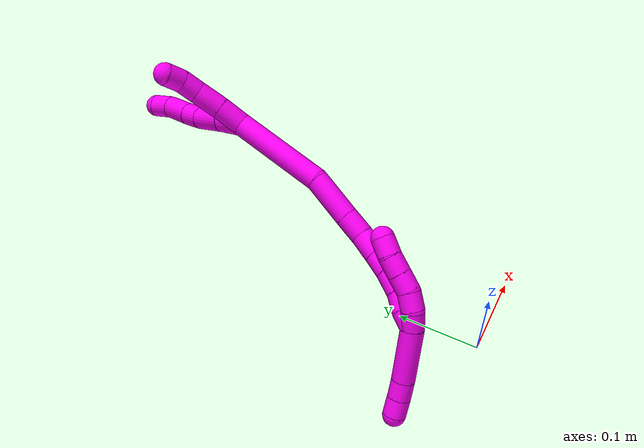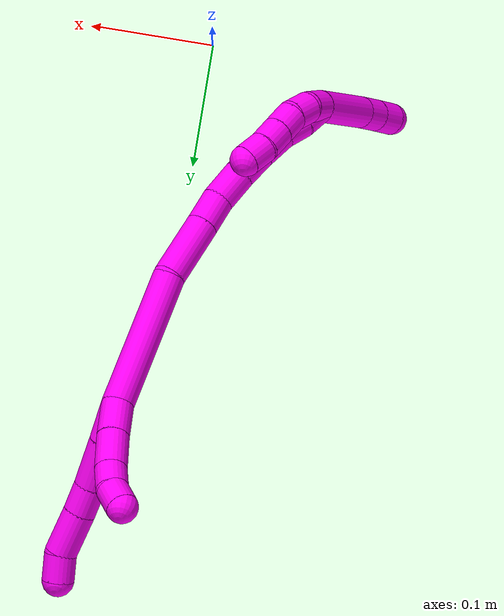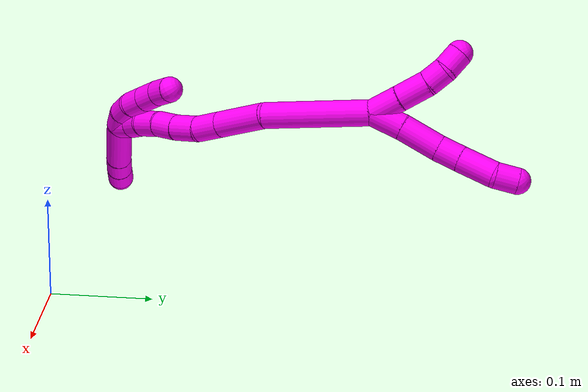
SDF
<sdf version="1.7">
 <world name="default">
  <model name="10">
   <static>0</static>
   <link name="10">
    <collision name="collision-cylinder-e_1_2_8">
     <pose>-0.004626 0.011483 0.009332 -0.888391 -0.303004 0.145063</pose>
     <geometry><cylinder><radius>0.0125</radius><length>0.031007</length></cylinder></geometry>
     <surface>
      <friction><ode><mu>1.16</mu><mu2>1.16</mu2><slip1>0</slip1><slip2>0</slip2></ode></friction>
      <contact><ode><kp>1e+06</kp><kd>1</kd><max_vel>0</max_vel><min_depth>0.001</min_depth></ode></contact>
     </surface>
    </collision>
    <visual name="visual-cylinder-e_1_2_8">
     <pose>-0.004626 0.011483 0.009332 -0.888391 -0.303004 0.145063</pose>
     <geometry><cylinder><radius>0.0125</radius><length>0.031007</length></cylinder></geometry>
     <material><ambient>1 0 0.964706 1</ambient></material>
    </visual>
    <collision name="collision-cylinder-e_2_8_9">
     <pose>-0.015193 0.038221 0.029076 -0.971838 -0.311224 0.165337</pose>
     <geometry><cylinder><radius>0.0125</radius><length>0.038802</length></cylinder></geometry>
     <surface>
      <friction><ode><mu>1.16</mu><mu2>1.16</mu2><slip1>0</slip1><slip2>0</slip2></ode></friction>
      <contact><ode><kp>1e+06</kp><kd>1</kd><max_vel>0</max_vel><min_depth>0.001</min_depth></ode></contact>
     </surface>
    </collision>
    <visual name="visual-cylinder-e_2_8_9">
     <pose>-0.015193 0.038221 0.029076 -0.971838 -0.311224 0.165337</pose>
     <geometry><cylinder><radius>0.0125</radius><length>0.038802</length></cylinder></geometry>
     <material><ambient>1 0 0.964706 1</ambient></material>
    </visual>
    <collision name="collision-cylinder-e_3_9_10">
     <pose>-0.023716 0.062121 0.046467 -0.891754 -0.228333 0.109506</pose>
     <geometry><cylinder><radius>0.0125</radius><length>0.022814</length></cylinder></geometry>
     <surface>
      <friction><ode><mu>1.16</mu><mu2>1.16</mu2><slip1>0</slip1><slip2>0</slip2></ode></friction>
      <contact><ode><kp>1e+06</kp><kd>1</kd><max_vel>0</max_vel><min_depth>0.001</min_depth></ode></contact>
     </surface>
    </collision>
    <visual name="visual-cylinder-e_3_9_10">
     <pose>-0.023716 0.062121 0.046467 -0.891754 -0.228333 0.109506</pose>
     <geometry><cylinder><radius>0.0125</radius><length>0.022814</length></cylinder></geometry>
     <material><ambient>1 0 0.964706 1</ambient></material>
    </visual>
    <collision name="collision-cylinder-e_4_10_11">
     <pose>-0.029396 0.084125 0.064694 -0.87088 -0.175567 0.081842</pose>
     <geometry><cylinder><radius>0.0125</radius><length>0.03547</length></cylinder></geometry>
     <surface>
      <friction><ode><mu>1.16</mu><mu2>1.16</mu2><slip1>0</slip1><slip2>0</slip2></ode></friction>
      <contact><ode><kp>1e+06</kp><kd>1</kd><max_vel>0</max_vel><min_depth>0.001</min_depth></ode></contact>
     </surface>
    </collision>
    <visual name="visual-cylinder-e_4_10_11">
     <pose>-0.029396 0.084125 0.064694 -0.87088 -0.175567 0.081842</pose>
     <geometry><cylinder><radius>0.0125</radius><length>0.03547</length></cylinder></geometry>
     <material><ambient>1 0 0.964706 1</ambient></material>
    </visual>
    <collision name="collision-cylinder-e_5_11_6">
     <pose>-0.037375 0.103714 0.083513 -0.688768 -0.461939 0.168299</pose>
     <geometry><cylinder><radius>0.0125</radius><length>0.021906</length></cylinder></geometry>
     <surface>
      <friction><ode><mu>1.16</mu><mu2>1.16</mu2><slip1>0</slip1><slip2>0</slip2></ode></friction>
      <contact><ode><kp>1e+06</kp><kd>1</kd><max_vel>0</max_vel><min_depth>0.001</min_depth></ode></contact>
     </surface>
    </collision>
    <visual name="visual-cylinder-e_5_11_6">
     <pose>-0.037375 0.103714 0.083513 -0.688768 -0.461939 0.168299</pose>
     <geometry><cylinder><radius>0.0125</radius><length>0.021906</length></cylinder></geometry>
     <material><ambient>1 0 0.964706 1</ambient></material>
    </visual>
    <collision name="collision-cylinder-e_1_2_12">
     <pose>-0.000797 -0.00041 0.014845 0.027604 -0.05365 -0.000741</pose>
     <geometry><cylinder><radius>0.0125</radius><length>0.029744</length></cylinder></geometry>
     <surface>
      <friction><ode><mu>1.16</mu><mu2>1.16</mu2><slip1>0</slip1><slip2>0</slip2></ode></friction>
      <contact><ode><kp>1e+06</kp><kd>1</kd><max_vel>0</max_vel><min_depth>0.001</min_depth></ode></contact>
     </surface>
    </collision>
    <visual name="visual-cylinder-e_1_2_12">
     <pose>-0.000797 -0.00041 0.014845 0.027604 -0.05365 -0.000741</pose>
     <geometry><cylinder><radius>0.0125</radius><length>0.029744</length></cylinder></geometry>
     <material><ambient>1 0 0.964706 1</ambient></material>
    </visual>
    <collision name="collision-cylinder-e_2_12_13">
     <pose>-0.003244 -0.001602 0.044451 0.05292 -0.111072 -0.002943</pose>
     <geometry><cylinder><radius>0.0125</radius><length>0.029747</length></cylinder></geometry>
     <surface>
      <friction><ode><mu>1.16</mu><mu2>1.16</mu2><slip1>0</slip1><slip2>0</slip2></ode></friction>
      <contact><ode><kp>1e+06</kp><kd>1</kd><max_vel>0</max_vel><min_depth>0.001</min_depth></ode></contact>
     </surface>
    </collision>
    <visual name="visual-cylinder-e_2_12_13">
     <pose>-0.003244 -0.001602 0.044451 0.05292 -0.111072 -0.002943</pose>
     <geometry><cylinder><radius>0.0125</radius><length>0.029747</length></cylinder></geometry>
     <material><ambient>1 0 0.964706 1</ambient></material>
    </visual>
    <collision name="collision-cylinder-e_3_13_14">
     <pose>-0.006014 -0.004761 0.06904 0.237313 -0.110476 -0.013184</pose>
     <geometry><cylinder><radius>0.0125</radius><length>0.020348</length></cylinder></geometry>
     <surface>
      <friction><ode><mu>1.16</mu><mu2>1.16</mu2><slip1>0</slip1><slip2>0</slip2></ode></friction>
      <contact><ode><kp>1e+06</kp><kd>1</kd><max_vel>0</max_vel><min_depth>0.001</min_depth></ode></contact>
     </surface>
    </collision>
    <visual name="visual-cylinder-e_3_13_14">
     <pose>-0.006014 -0.004761 0.06904 0.237313 -0.110476 -0.013184</pose>
     <geometry><cylinder><radius>0.0125</radius><length>0.020348</length></cylinder></geometry>
     <material><ambient>1 0 0.964706 1</ambient></material>
    </visual>
    <collision name="collision-cylinder-e_4_14_5">
     <pose>-0.010239 -0.011708 0.087301 0.496694 -0.312937 -0.079966</pose>
     <geometry><cylinder><radius>0.0125</radius><length>0.020162</length></cylinder></geometry>
     <surface>
      <friction><ode><mu>1.16</mu><mu2>1.16</mu2><slip1>0</slip1><slip2>0</slip2></ode></friction>
      <contact><ode><kp>1e+06</kp><kd>1</kd><max_vel>0</max_vel><min_depth>0.001</min_depth></ode></contact>
     </surface>
    </collision>
    <visual name="visual-cylinder-e_4_14_5">
     <pose>-0.010239 -0.011708 0.087301 0.496694 -0.312937 -0.079966</pose>
     <geometry><cylinder><radius>0.0125</radius><length>0.020162</length></cylinder></geometry>
     <material><ambient>1 0 0.964706 1</ambient></material>
    </visual>
    <collision name="collision-cylinder-e_1_2_15">
     <pose>0.002214 -0.022186 -0.04907 2.71696 0.041081 0.190028</pose>
     <geometry><cylinder><radius>0.0125</radius><length>0.107795</length></cylinder></geometry>
     <surface>
      <friction><ode><mu>1.16</mu><mu2>1.16</mu2><slip1>0</slip1><slip2>0</slip2></ode></friction>
      <contact><ode><kp>1e+06</kp><kd>1</kd><max_vel>0</max_vel><min_depth>0.001</min_depth></ode></contact>
     </surface>
    </collision>
    <visual name="visual-cylinder-e_1_2_15">
     <pose>0.002214 -0.022186 -0.04907 2.71696 0.041081 0.190028</pose>
     <geometry><cylinder><radius>0.0125</radius><length>0.107795</length></cylinder></geometry>
     <material><ambient>1 0 0.964706 1</ambient></material>
    </visual>
    <collision name="collision-cylinder-e_2_15_16">
     <pose>-0.000781 -0.051889 -0.122076 2.83733 -0.204667 -1.18034</pose>
     <geometry><cylinder><radius>0.0125</radius><length>0.051247</length></cylinder></geometry>
     <surface>
      <friction><ode><mu>1.16</mu><mu2>1.16</mu2><slip1>0</slip1><slip2>0</slip2></ode></friction>
      <contact><ode><kp>1e+06</kp><kd>1</kd><max_vel>0</max_vel><min_depth>0.001</min_depth></ode></contact>
     </surface>
    </collision>
    <visual name="visual-cylinder-e_2_15_16">
     <pose>-0.000781 -0.051889 -0.122076 2.83733 -0.204667 -1.18034</pose>
     <geometry><cylinder><radius>0.0125</radius><length>0.051247</length></cylinder></geometry>
     <material><ambient>1 0 0.964706 1</ambient></material>
    </visual>
    <collision name="collision-cylinder-e_3_16_17">
     <pose>-0.008407 -0.063194 -0.158251 2.84139 -0.186581 -1.10801</pose>
     <geometry><cylinder><radius>0.0125</radius><length>0.026076</length></cylinder></geometry>
     <surface>
      <friction><ode><mu>1.16</mu><mu2>1.16</mu2><slip1>0</slip1><slip2>0</slip2></ode></friction>
      <contact><ode><kp>1e+06</kp><kd>1</kd><max_vel>0</max_vel><min_depth>0.001</min_depth></ode></contact>
     </surface>
    </collision>
    <visual name="visual-cylinder-e_3_16_17">
     <pose>-0.008407 -0.063194 -0.158251 2.84139 -0.186581 -1.10801</pose>
     <geometry><cylinder><radius>0.0125</radius><length>0.026076</length></cylinder></geometry>
     <material><ambient>1 0 0.964706 1</ambient></material>
    </visual>
    <collision name="collision-cylinder-e_4_17_18">
     <pose>-0.014225 -0.073603 -0.181812 2.61248 -0.253583 -0.879621</pose>
     <geometry><cylinder><radius>0.0125</radius><length>0.027099</length></cylinder></geometry>
     <surface>
      <friction><ode><mu>1.16</mu><mu2>1.16</mu2><slip1>0</slip1><slip2>0</slip2></ode></friction>
      <contact><ode><kp>1e+06</kp><kd>1</kd><max_vel>0</max_vel><min_depth>0.001</min_depth></ode></contact>
     </surface>
    </collision>
    <visual name="visual-cylinder-e_4_17_18">
     <pose>-0.014225 -0.073603 -0.181812 2.61248 -0.253583 -0.879621</pose>
     <geometry><cylinder><radius>0.0125</radius><length>0.027099</length></cylinder></geometry>
     <material><ambient>1 0 0.964706 1</ambient></material>
    </visual>
    <collision name="collision-cylinder-e_5_18_19">
     <pose>-0.020777 -0.086874 -0.202001 2.49805 -0.277201 -0.792624</pose>
     <geometry><cylinder><radius>0.0125</radius><length>0.023046</length></cylinder></geometry>
     <surface>
      <friction><ode><mu>1.16</mu><mu2>1.16</mu2><slip1>0</slip1><slip2>0</slip2></ode></friction>
      <contact><ode><kp>1e+06</kp><kd>1</kd><max_vel>0</max_vel><min_depth>0.001</min_depth></ode></contact>
     </surface>
    </collision>
    <visual name="visual-cylinder-e_5_18_19">
     <pose>-0.020777 -0.086874 -0.202001 2.49805 -0.277201 -0.792624</pose>
     <geometry><cylinder><radius>0.0125</radius><length>0.023046</length></cylinder></geometry>
     <material><ambient>1 0 0.964706 1</ambient></material>
    </visual>
    <collision name="collision-cylinder-e_6_19_20">
     <pose>-0.028507 -0.099093 -0.22061 2.6223 -0.387203 -1.27163</pose>
     <geometry><cylinder><radius>0.0125</radius><length>0.024239</length></cylinder></geometry>
     <surface>
      <friction><ode><mu>1.16</mu><mu2>1.16</mu2><slip1>0</slip1><slip2>0</slip2></ode></friction>
      <contact><ode><kp>1e+06</kp><kd>1</kd><max_vel>0</max_vel><min_depth>0.001</min_depth></ode></contact>
     </surface>
    </collision>
    <visual name="visual-cylinder-e_6_19_20">
     <pose>-0.028507 -0.099093 -0.22061 2.6223 -0.387203 -1.27163</pose>
     <geometry><cylinder><radius>0.0125</radius><length>0.024239</length></cylinder></geometry>
     <material><ambient>1 0 0.964706 1</ambient></material>
    </visual>
    <collision name="collision-cylinder-e_7_20_21">
     <pose>-0.038884 -0.108172 -0.237832 2.70296 -0.612083 -1.91284</pose>
     <geometry><cylinder><radius>0.0125</radius><length>0.02019</length></cylinder></geometry>
     <surface>
      <friction><ode><mu>1.16</mu><mu2>1.16</mu2><slip1>0</slip1><slip2>0</slip2></ode></friction>
      <contact><ode><kp>1e+06</kp><kd>1</kd><max_vel>0</max_vel><min_depth>0.001</min_depth></ode></contact>
     </surface>
    </collision>
    <visual name="visual-cylinder-e_7_20_21">
     <pose>-0.038884 -0.108172 -0.237832 2.70296 -0.612083 -1.91284</pose>
     <geometry><cylinder><radius>0.0125</radius><length>0.02019</length></cylinder></geometry>
     <material><ambient>1 0 0.964706 1</ambient></material>
    </visual>
    <collision name="collision-cylinder-e_8_21_1">
     <pose>-0.048801 -0.116085 -0.253483 2.6472 -0.417435 -1.3965</pose>
     <geometry><cylinder><radius>0.0125</radius><length>0.020308</length></cylinder></geometry>
     <surface>
      <friction><ode><mu>1.16</mu><mu2>1.16</mu2><slip1>0</slip1><slip2>0</slip2></ode></friction>
      <contact><ode><kp>1e+06</kp><kd>1</kd><max_vel>0</max_vel><min_depth>0.001</min_depth></ode></contact>
     </surface>
    </collision>
    <visual name="visual-cylinder-e_8_21_1">
     <pose>-0.048801 -0.116085 -0.253483 2.6472 -0.417435 -1.3965</pose>
     <geometry><cylinder><radius>0.0125</radius><length>0.020308</length></cylinder></geometry>
     <material><ambient>1 0 0.964706 1</ambient></material>
    </visual>
    <collision name="collision-cylinder-e_1_1_22">
     <pose>-0.045883 -0.123086 -0.255038 0.374096 0.780276 0.155341</pose>
     <geometry><cylinder><radius>0.0125</radius><length>0.02</length></cylinder></geometry>
     <surface>
      <friction><ode><mu>1.16</mu><mu2>1.16</mu2><slip1>0</slip1><slip2>0</slip2></ode></friction>
      <contact><ode><kp>1e+06</kp><kd>1</kd><max_vel>0</max_vel><min_depth>0.001</min_depth></ode></contact>
     </surface>
    </collision>
    <visual name="visual-cylinder-e_1_1_22">
     <pose>-0.045883 -0.123086 -0.255038 0.374096 0.780276 0.155341</pose>
     <geometry><cylinder><radius>0.0125</radius><length>0.02</length></cylinder></geometry>
     <material><ambient>1 0 0.964706 1</ambient></material>
    </visual>
    <collision name="collision-cylinder-e_2_22_23">
     <pose>-0.032798 -0.125322 -0.240469 -0.045368 0.649791 -0.015284</pose>
     <geometry><cylinder><radius>0.0125</radius><length>0.02</length></cylinder></geometry>
     <surface>
      <friction><ode><mu>1.16</mu><mu2>1.16</mu2><slip1>0</slip1><slip2>0</slip2></ode></friction>
      <contact><ode><kp>1e+06</kp><kd>1</kd><max_vel>0</max_vel><min_depth>0.001</min_depth></ode></contact>
     </surface>
    </collision>
    <visual name="visual-cylinder-e_2_22_23">
     <pose>-0.032798 -0.125322 -0.240469 -0.045368 0.649791 -0.015284</pose>
     <geometry><cylinder><radius>0.0125</radius><length>0.02</length></cylinder></geometry>
     <material><ambient>1 0 0.964706 1</ambient></material>
    </visual>
    <collision name="collision-cylinder-e_3_23_24">
     <pose>-0.022998 -0.123258 -0.223402 -0.184776 0.384293 -0.036046</pose>
     <geometry><cylinder><radius>0.0125</radius><length>0.02</length></cylinder></geometry>
     <surface>
      <friction><ode><mu>1.16</mu><mu2>1.16</mu2><slip1>0</slip1><slip2>0</slip2></ode></friction>
      <contact><ode><kp>1e+06</kp><kd>1</kd><max_vel>0</max_vel><min_depth>0.001</min_depth></ode></contact>
     </surface>
    </collision>
    <visual name="visual-cylinder-e_3_23_24">
     <pose>-0.022998 -0.123258 -0.223402 -0.184776 0.384293 -0.036046</pose>
     <geometry><cylinder><radius>0.0125</radius><length>0.02</length></cylinder></geometry>
     <material><ambient>1 0 0.964706 1</ambient></material>
    </visual>
    <collision name="collision-cylinder-e_4_24_25">
     <pose>-0.015484 -0.119791 -0.205195 -0.191607 0.386089 -0.037566</pose>
     <geometry><cylinder><radius>0.0125</radius><length>0.02</length></cylinder></geometry>
     <surface>
      <friction><ode><mu>1.16</mu><mu2>1.16</mu2><slip1>0</slip1><slip2>0</slip2></ode></friction>
      <contact><ode><kp>1e+06</kp><kd>1</kd><max_vel>0</max_vel><min_depth>0.001</min_depth></ode></contact>
     </surface>
    </collision>
    <visual name="visual-cylinder-e_4_24_25">
     <pose>-0.015484 -0.119791 -0.205195 -0.191607 0.386089 -0.037566</pose>
     <geometry><cylinder><radius>0.0125</radius><length>0.02</length></cylinder></geometry>
     <material><ambient>1 0 0.964706 1</ambient></material>
    </visual>
    <collision name="collision-cylinder-e_5_25_4">
     <pose>-0.006888 -0.115239 -0.1878 -0.323969 0.504068 -0.084113</pose>
     <geometry><cylinder><radius>0.0125</radius><length>0.02</length></cylinder></geometry>
     <surface>
      <friction><ode><mu>1.16</mu><mu2>1.16</mu2><slip1>0</slip1><slip2>0</slip2></ode></friction>
      <contact><ode><kp>1e+06</kp><kd>1</kd><max_vel>0</max_vel><min_depth>0.001</min_depth></ode></contact>
     </surface>
    </collision>
    <visual name="visual-cylinder-e_5_25_4">
     <pose>-0.006888 -0.115239 -0.1878 -0.323969 0.504068 -0.084113</pose>
     <geometry><cylinder><radius>0.0125</radius><length>0.02</length></cylinder></geometry>
     <material><ambient>1 0 0.964706 1</ambient></material>
    </visual>
    <collision name="collision-cylinder-e_1_1_26">
     <pose>-0.076256 -0.11266 -0.277921 -2.69304 -0.912406 2.27132</pose>
     <geometry><cylinder><radius>0.0125</radius><length>0.059013</length></cylinder></geometry>
     <surface>
      <friction><ode><mu>1.16</mu><mu2>1.16</mu2><slip1>0</slip1><slip2>0</slip2></ode></friction>
      <contact><ode><kp>1e+06</kp><kd>1</kd><max_vel>0</max_vel><min_depth>0.001</min_depth></ode></contact>
     </surface>
    </collision>
    <visual name="visual-cylinder-e_1_1_26">
     <pose>-0.076256 -0.11266 -0.277921 -2.69304 -0.912406 2.27132</pose>
     <geometry><cylinder><radius>0.0125</radius><length>0.059013</length></cylinder></geometry>
     <material><ambient>1 0 0.964706 1</ambient></material>
    </visual>
    <collision name="collision-cylinder-e_2_26_27">
     <pose>-0.108208 -0.102438 -0.299402 -2.7113 -0.98325 2.36666</pose>
     <geometry><cylinder><radius>0.0125</radius><length>0.020695</length></cylinder></geometry>
     <surface>
      <friction><ode><mu>1.16</mu><mu2>1.16</mu2><slip1>0</slip1><slip2>0</slip2></ode></friction>
      <contact><ode><kp>1e+06</kp><kd>1</kd><max_vel>0</max_vel><min_depth>0.001</min_depth></ode></contact>
     </surface>
    </collision>
    <visual name="visual-cylinder-e_2_26_27">
     <pose>-0.108208 -0.102438 -0.299402 -2.7113 -0.98325 2.36666</pose>
     <geometry><cylinder><radius>0.0125</radius><length>0.020695</length></cylinder></geometry>
     <material><ambient>1 0 0.964706 1</ambient></material>
    </visual>
    <collision name="collision-cylinder-e_3_27_3">
     <pose>-0.125603 -0.098154 -0.309328 -2.75982 -1.04655 2.49518</pose>
     <geometry><cylinder><radius>0.0125</radius><length>0.020292</length></cylinder></geometry>
     <surface>
      <friction><ode><mu>1.16</mu><mu2>1.16</mu2><slip1>0</slip1><slip2>0</slip2></ode></friction>
      <contact><ode><kp>1e+06</kp><kd>1</kd><max_vel>0</max_vel><min_depth>0.001</min_depth></ode></contact>
     </surface>
    </collision>
    <visual name="visual-cylinder-e_3_27_3">
     <pose>-0.125603 -0.098154 -0.309328 -2.75982 -1.04655 2.49518</pose>
     <geometry><cylinder><radius>0.0125</radius><length>0.020292</length></cylinder></geometry>
     <material><ambient>1 0 0.964706 1</ambient></material>
    </visual>
    <collision name="collision-sphere-3">
     <pose>-0.134387 -0.096261 -0.314041 0 -0 0</pose>
     <geometry><sphere><radius>0.0125</radius></sphere></geometry>
     <surface>
      <friction><ode><mu>1.16</mu><mu2>1.16</mu2><slip1>0</slip1><slip2>0</slip2></ode></friction>
      <contact><ode><kp>1e+06</kp><kd>1</kd><max_vel>0</max_vel><min_depth>0.001</min_depth></ode></contact>
     </surface>
    </collision>
    <visual name="visual-sphere-3">
     <pose>-0.134387 -0.096261 -0.314041 0 -0 0</pose>
     <geometry><sphere><radius>0.0125</radius></sphere></geometry>
     <material><ambient>1 0 0.964706 1</ambient></material>
    </visual>
    <collision name="collision-sphere-27">
     <pose>-0.11682 -0.100046 -0.304615 0 -0 0</pose>
     <geometry><sphere><radius>0.0125</radius></sphere></geometry>
     <surface>
      <friction><ode><mu>1.16</mu><mu2>1.16</mu2><slip1>0</slip1><slip2>0</slip2></ode></friction>
      <contact><ode><kp>1e+06</kp><kd>1</kd><max_vel>0</max_vel><min_depth>0.001</min_depth></ode></contact>
     </surface>
    </collision>
    <visual name="visual-sphere-27">
     <pose>-0.11682 -0.100046 -0.304615 0 -0 0</pose>
     <geometry><sphere><radius>0.0125</radius></sphere></geometry>
     <material><ambient>1 0 0.964706 1</ambient></material>
    </visual>
    <collision name="collision-sphere-26">
     <pose>-0.099595 -0.104831 -0.294189 0 -0 0</pose>
     <geometry><sphere><radius>0.0125</radius></sphere></geometry>
     <surface>
      <friction><ode><mu>1.16</mu><mu2>1.16</mu2><slip1>0</slip1><slip2>0</slip2></ode></friction>
      <contact><ode><kp>1e+06</kp><kd>1</kd><max_vel>0</max_vel><min_depth>0.001</min_depth></ode></contact>
     </surface>
    </collision>
    <visual name="visual-sphere-26">
     <pose>-0.099595 -0.104831 -0.294189 0 -0 0</pose>
     <geometry><sphere><radius>0.0125</radius></sphere></geometry>
     <material><ambient>1 0 0.964706 1</ambient></material>
    </visual>
    <collision name="collision-sphere-4">
     <pose>-0.002058 -0.112452 -0.179499 0 -0 0</pose>
     <geometry><sphere><radius>0.0125</radius></sphere></geometry>
     <surface>
      <friction><ode><mu>1.16</mu><mu2>1.16</mu2><slip1>0</slip1><slip2>0</slip2></ode></friction>
      <contact><ode><kp>1e+06</kp><kd>1</kd><max_vel>0</max_vel><min_depth>0.001</min_depth></ode></contact>
     </surface>
    </collision>
    <visual name="visual-sphere-4">
     <pose>-0.002058 -0.112452 -0.179499 0 -0 0</pose>
     <geometry><sphere><radius>0.0125</radius></sphere></geometry>
     <material><ambient>1 0 0.964706 1</ambient></material>
    </visual>
    <collision name="collision-sphere-25">
     <pose>-0.011718 -0.118026 -0.1961 0 -0 0</pose>
     <geometry><sphere><radius>0.0125</radius></sphere></geometry>
     <surface>
      <friction><ode><mu>1.16</mu><mu2>1.16</mu2><slip1>0</slip1><slip2>0</slip2></ode></friction>
      <contact><ode><kp>1e+06</kp><kd>1</kd><max_vel>0</max_vel><min_depth>0.001</min_depth></ode></contact>
     </surface>
    </collision>
    <visual name="visual-sphere-25">
     <pose>-0.011718 -0.118026 -0.1961 0 -0 0</pose>
     <geometry><sphere><radius>0.0125</radius></sphere></geometry>
     <material><ambient>1 0 0.964706 1</ambient></material>
    </visual>
    <collision name="collision-sphere-24">
     <pose>-0.019249 -0.121555 -0.214289 0 -0 0</pose>
     <geometry><sphere><radius>0.0125</radius></sphere></geometry>
     <surface>
      <friction><ode><mu>1.16</mu><mu2>1.16</mu2><slip1>0</slip1><slip2>0</slip2></ode></friction>
      <contact><ode><kp>1e+06</kp><kd>1</kd><max_vel>0</max_vel><min_depth>0.001</min_depth></ode></contact>
     </surface>
    </collision>
    <visual name="visual-sphere-24">
     <pose>-0.019249 -0.121555 -0.214289 0 -0 0</pose>
     <geometry><sphere><radius>0.0125</radius></sphere></geometry>
     <material><ambient>1 0 0.964706 1</ambient></material>
    </visual>
    <collision name="collision-sphere-23">
     <pose>-0.026747 -0.124961 -0.232515 0 -0 0</pose>
     <geometry><sphere><radius>0.0125</radius></sphere></geometry>
     <surface>
      <friction><ode><mu>1.16</mu><mu2>1.16</mu2><slip1>0</slip1><slip2>0</slip2></ode></friction>
      <contact><ode><kp>1e+06</kp><kd>1</kd><max_vel>0</max_vel><min_depth>0.001</min_depth></ode></contact>
     </surface>
    </collision>
    <visual name="visual-sphere-23">
     <pose>-0.026747 -0.124961 -0.232515 0 -0 0</pose>
     <geometry><sphere><radius>0.0125</radius></sphere></geometry>
     <material><ambient>1 0 0.964706 1</ambient></material>
    </visual>
    <collision name="collision-sphere-22">
     <pose>-0.038848 -0.125684 -0.248423 0 -0 0</pose>
     <geometry><sphere><radius>0.0125</radius></sphere></geometry>
     <surface>
      <friction><ode><mu>1.16</mu><mu2>1.16</mu2><slip1>0</slip1><slip2>0</slip2></ode></friction>
      <contact><ode><kp>1e+06</kp><kd>1</kd><max_vel>0</max_vel><min_depth>0.001</min_depth></ode></contact>
     </surface>
    </collision>
    <visual name="visual-sphere-22">
     <pose>-0.038848 -0.125684 -0.248423 0 -0 0</pose>
     <geometry><sphere><radius>0.0125</radius></sphere></geometry>
     <material><ambient>1 0 0.964706 1</ambient></material>
    </visual>
    <collision name="collision-sphere-1">
     <pose>-0.052917 -0.120489 -0.261654 0 -0 0</pose>
     <geometry><sphere><radius>0.0125</radius></sphere></geometry>
     <surface>
      <friction><ode><mu>1.16</mu><mu2>1.16</mu2><slip1>0</slip1><slip2>0</slip2></ode></friction>
      <contact><ode><kp>1e+06</kp><kd>1</kd><max_vel>0</max_vel><min_depth>0.001</min_depth></ode></contact>
     </surface>
    </collision>
    <visual name="visual-sphere-1">
     <pose>-0.052917 -0.120489 -0.261654 0 -0 0</pose>
     <geometry><sphere><radius>0.0125</radius></sphere></geometry>
     <material><ambient>1 0 0.964706 1</ambient></material>
    </visual>
    <collision name="collision-sphere-21">
     <pose>-0.044684 -0.111681 -0.245313 0 -0 0</pose>
     <geometry><sphere><radius>0.0125</radius></sphere></geometry>
     <surface>
      <friction><ode><mu>1.16</mu><mu2>1.16</mu2><slip1>0</slip1><slip2>0</slip2></ode></friction>
      <contact><ode><kp>1e+06</kp><kd>1</kd><max_vel>0</max_vel><min_depth>0.001</min_depth></ode></contact>
     </surface>
    </collision>
    <visual name="visual-sphere-21">
     <pose>-0.044684 -0.111681 -0.245313 0 -0 0</pose>
     <geometry><sphere><radius>0.0125</radius></sphere></geometry>
     <material><ambient>1 0 0.964706 1</ambient></material>
    </visual>
    <collision name="collision-sphere-6">
     <pose>-0.042257 0.109946 0.091083 0 -0 0</pose>
     <geometry><sphere><radius>0.0125</radius></sphere></geometry>
     <surface>
      <friction><ode><mu>1.16</mu><mu2>1.16</mu2><slip1>0</slip1><slip2>0</slip2></ode></friction>
      <contact><ode><kp>1e+06</kp><kd>1</kd><max_vel>0</max_vel><min_depth>0.001</min_depth></ode></contact>
     </surface>
    </collision>
    <visual name="visual-sphere-6">
     <pose>-0.042257 0.109946 0.091083 0 -0 0</pose>
     <geometry><sphere><radius>0.0125</radius></sphere></geometry>
     <material><ambient>1 0 0.964706 1</ambient></material>
    </visual>
    <collision name="collision-sphere-11">
     <pose>-0.032494 0.097482 0.075943 0 -0 0</pose>
     <geometry><sphere><radius>0.0125</radius></sphere></geometry>
     <surface>
      <friction><ode><mu>1.16</mu><mu2>1.16</mu2><slip1>0</slip1><slip2>0</slip2></ode></friction>
      <contact><ode><kp>1e+06</kp><kd>1</kd><max_vel>0</max_vel><min_depth>0.001</min_depth></ode></contact>
     </surface>
    </collision>
    <visual name="visual-sphere-11">
     <pose>-0.032494 0.097482 0.075943 0 -0 0</pose>
     <geometry><sphere><radius>0.0125</radius></sphere></geometry>
     <material><ambient>1 0 0.964706 1</ambient></material>
    </visual>
    <collision name="collision-sphere-10">
     <pose>-0.026298 0.070768 0.053446 0 -0 0</pose>
     <geometry><sphere><radius>0.0125</radius></sphere></geometry>
     <surface>
      <friction><ode><mu>1.16</mu><mu2>1.16</mu2><slip1>0</slip1><slip2>0</slip2></ode></friction>
      <contact><ode><kp>1e+06</kp><kd>1</kd><max_vel>0</max_vel><min_depth>0.001</min_depth></ode></contact>
     </surface>
    </collision>
    <visual name="visual-sphere-10">
     <pose>-0.026298 0.070768 0.053446 0 -0 0</pose>
     <geometry><sphere><radius>0.0125</radius></sphere></geometry>
     <material><ambient>1 0 0.964706 1</ambient></material>
    </visual>
    <collision name="collision-sphere-9">
     <pose>-0.021134 0.053475 0.039489 0 -0 0</pose>
     <geometry><sphere><radius>0.0125</radius></sphere></geometry>
     <surface>
      <friction><ode><mu>1.16</mu><mu2>1.16</mu2><slip1>0</slip1><slip2>0</slip2></ode></friction>
      <contact><ode><kp>1e+06</kp><kd>1</kd><max_vel>0</max_vel><min_depth>0.001</min_depth></ode></contact>
     </surface>
    </collision>
    <visual name="visual-sphere-9">
     <pose>-0.021134 0.053475 0.039489 0 -0 0</pose>
     <geometry><sphere><radius>0.0125</radius></sphere></geometry>
     <material><ambient>1 0 0.964706 1</ambient></material>
    </visual>
    <collision name="collision-sphere-2">
     <geometry><sphere><radius>0.0125</radius></sphere></geometry>
     <surface>
      <friction><ode><mu>1.16</mu><mu2>1.16</mu2><slip1>0</slip1><slip2>0</slip2></ode></friction>
      <contact><ode><kp>1e+06</kp><kd>1</kd><max_vel>0</max_vel><min_depth>0.001</min_depth></ode></contact>
     </surface>
    </collision>
    <visual name="visual-sphere-2">
     <geometry><sphere><radius>0.0125</radius></sphere></geometry>
     <material><ambient>1 0 0.964706 1</ambient></material>
    </visual>
    <collision name="collision-sphere-19">
     <pose>-0.023931 -0.093524 -0.210867 0 -0 0</pose>
     <geometry><sphere><radius>0.0125</radius></sphere></geometry>
     <surface>
      <friction><ode><mu>1.16</mu><mu2>1.16</mu2><slip1>0</slip1><slip2>0</slip2></ode></friction>
      <contact><ode><kp>1e+06</kp><kd>1</kd><max_vel>0</max_vel><min_depth>0.001</min_depth></ode></contact>
     </surface>
    </collision>
    <visual name="visual-sphere-19">
     <pose>-0.023931 -0.093524 -0.210867 0 -0 0</pose>
     <geometry><sphere><radius>0.0125</radius></sphere></geometry>
     <material><ambient>1 0 0.964706 1</ambient></material>
    </visual>
    <collision name="collision-sphere-8">
     <pose>-0.009252 0.022967 0.018664 0 -0 0</pose>
     <geometry><sphere><radius>0.0125</radius></sphere></geometry>
     <surface>
      <friction><ode><mu>1.16</mu><mu2>1.16</mu2><slip1>0</slip1><slip2>0</slip2></ode></friction>
      <contact><ode><kp>1e+06</kp><kd>1</kd><max_vel>0</max_vel><min_depth>0.001</min_depth></ode></contact>
     </surface>
    </collision>
    <visual name="visual-sphere-8">
     <pose>-0.009252 0.022967 0.018664 0 -0 0</pose>
     <geometry><sphere><radius>0.0125</radius></sphere></geometry>
     <material><ambient>1 0 0.964706 1</ambient></material>
    </visual>
    <collision name="collision-sphere-12">
     <pose>-0.001595 -0.00082 0.02969 0 -0 0</pose>
     <geometry><sphere><radius>0.0125</radius></sphere></geometry>
     <surface>
      <friction><ode><mu>1.16</mu><mu2>1.16</mu2><slip1>0</slip1><slip2>0</slip2></ode></friction>
      <contact><ode><kp>1e+06</kp><kd>1</kd><max_vel>0</max_vel><min_depth>0.001</min_depth></ode></contact>
     </surface>
    </collision>
    <visual name="visual-sphere-12">
     <pose>-0.001595 -0.00082 0.02969 0 -0 0</pose>
     <geometry><sphere><radius>0.0125</radius></sphere></geometry>
     <material><ambient>1 0 0.964706 1</ambient></material>
    </visual>
    <collision name="collision-sphere-13">
     <pose>-0.004892 -0.002384 0.059212 0 -0 0</pose>
     <geometry><sphere><radius>0.0125</radius></sphere></geometry>
     <surface>
      <friction><ode><mu>1.16</mu><mu2>1.16</mu2><slip1>0</slip1><slip2>0</slip2></ode></friction>
      <contact><ode><kp>1e+06</kp><kd>1</kd><max_vel>0</max_vel><min_depth>0.001</min_depth></ode></contact>
     </surface>
    </collision>
    <visual name="visual-sphere-13">
     <pose>-0.004892 -0.002384 0.059212 0 -0 0</pose>
     <geometry><sphere><radius>0.0125</radius></sphere></geometry>
     <material><ambient>1 0 0.964706 1</ambient></material>
    </visual>
    <collision name="collision-sphere-14">
     <pose>-0.007136 -0.007138 0.078869 0 -0 0</pose>
     <geometry><sphere><radius>0.0125</radius></sphere></geometry>
     <surface>
      <friction><ode><mu>1.16</mu><mu2>1.16</mu2><slip1>0</slip1><slip2>0</slip2></ode></friction>
      <contact><ode><kp>1e+06</kp><kd>1</kd><max_vel>0</max_vel><min_depth>0.001</min_depth></ode></contact>
     </surface>
    </collision>
    <visual name="visual-sphere-14">
     <pose>-0.007136 -0.007138 0.078869 0 -0 0</pose>
     <geometry><sphere><radius>0.0125</radius></sphere></geometry>
     <material><ambient>1 0 0.964706 1</ambient></material>
    </visual>
    <collision name="collision-sphere-5">
     <pose>-0.013342 -0.016279 0.095733 0 -0 0</pose>
     <geometry><sphere><radius>0.0125</radius></sphere></geometry>
     <surface>
      <friction><ode><mu>1.16</mu><mu2>1.16</mu2><slip1>0</slip1><slip2>0</slip2></ode></friction>
      <contact><ode><kp>1e+06</kp><kd>1</kd><max_vel>0</max_vel><min_depth>0.001</min_depth></ode></contact>
     </surface>
    </collision>
    <visual name="visual-sphere-5">
     <pose>-0.013342 -0.016279 0.095733 0 -0 0</pose>
     <geometry><sphere><radius>0.0125</radius></sphere></geometry>
     <material><ambient>1 0 0.964706 1</ambient></material>
    </visual>
    <collision name="collision-sphere-15">
     <pose>0.004427 -0.044372 -0.098139 0 -0 0</pose>
     <geometry><sphere><radius>0.0125</radius></sphere></geometry>
     <surface>
      <friction><ode><mu>1.16</mu><mu2>1.16</mu2><slip1>0</slip1><slip2>0</slip2></ode></friction>
      <contact><ode><kp>1e+06</kp><kd>1</kd><max_vel>0</max_vel><min_depth>0.001</min_depth></ode></contact>
     </surface>
    </collision>
    <visual name="visual-sphere-15">
     <pose>0.004427 -0.044372 -0.098139 0 -0 0</pose>
     <geometry><sphere><radius>0.0125</radius></sphere></geometry>
     <material><ambient>1 0 0.964706 1</ambient></material>
    </visual>
    <collision name="collision-sphere-16">
     <pose>-0.005989 -0.059405 -0.146012 0 -0 0</pose>
     <geometry><sphere><radius>0.0125</radius></sphere></geometry>
     <surface>
      <friction><ode><mu>1.16</mu><mu2>1.16</mu2><slip1>0</slip1><slip2>0</slip2></ode></friction>
      <contact><ode><kp>1e+06</kp><kd>1</kd><max_vel>0</max_vel><min_depth>0.001</min_depth></ode></contact>
     </surface>
    </collision>
    <visual name="visual-sphere-16">
     <pose>-0.005989 -0.059405 -0.146012 0 -0 0</pose>
     <geometry><sphere><radius>0.0125</radius></sphere></geometry>
     <material><ambient>1 0 0.964706 1</ambient></material>
    </visual>
    <collision name="collision-sphere-17">
     <pose>-0.010826 -0.066982 -0.170489 0 -0 0</pose>
     <geometry><sphere><radius>0.0125</radius></sphere></geometry>
     <surface>
      <friction><ode><mu>1.16</mu><mu2>1.16</mu2><slip1>0</slip1><slip2>0</slip2></ode></friction>
      <contact><ode><kp>1e+06</kp><kd>1</kd><max_vel>0</max_vel><min_depth>0.001</min_depth></ode></contact>
     </surface>
    </collision>
    <visual name="visual-sphere-17">
     <pose>-0.010826 -0.066982 -0.170489 0 -0 0</pose>
     <geometry><sphere><radius>0.0125</radius></sphere></geometry>
     <material><ambient>1 0 0.964706 1</ambient></material>
    </visual>
    <collision name="collision-sphere-18">
     <pose>-0.017624 -0.080224 -0.193134 0 -0 0</pose>
     <geometry><sphere><radius>0.0125</radius></sphere></geometry>
     <surface>
      <friction><ode><mu>1.16</mu><mu2>1.16</mu2><slip1>0</slip1><slip2>0</slip2></ode></friction>
      <contact><ode><kp>1e+06</kp><kd>1</kd><max_vel>0</max_vel><min_depth>0.001</min_depth></ode></contact>
     </surface>
    </collision>
    <visual name="visual-sphere-18">
     <pose>-0.017624 -0.080224 -0.193134 0 -0 0</pose>
     <geometry><sphere><radius>0.0125</radius></sphere></geometry>
     <material><ambient>1 0 0.964706 1</ambient></material>
    </visual>
    <collision name="collision-sphere-20">
     <pose>-0.033083 -0.104662 -0.230352 0 -0 0</pose>
     <geometry><sphere><radius>0.0125</radius></sphere></geometry>
     <surface>
      <friction><ode><mu>1.16</mu><mu2>1.16</mu2><slip1>0</slip1><slip2>0</slip2></ode></friction>
      <contact><ode><kp>1e+06</kp><kd>1</kd><max_vel>0</max_vel><min_depth>0.001</min_depth></ode></contact>
     </surface>
    </collision>
    <visual name="visual-sphere-20">
     <pose>-0.033083 -0.104662 -0.230352 0 -0 0</pose>
     <geometry><sphere><radius>0.0125</radius></sphere></geometry>
     <material><ambient>1 0 0.964706 1</ambient></material>
    </visual>
    <inertial>
     <pose>-0.024941 -0.043217 -0.106843 0 -0 0</pose>
     <mass>0.75</mass>
     <inertia>
      <ixx>0.000141</ixx>
      <ixy>0</ixy>
      <ixz>0</ixz>
      <iyy>-4.4e-05</iyy>
      <iyz>0</iyz>
      <izz>5.4e-05</izz>
     </inertia>
    </inertial>
   </link>
   <pose>0.020983 0.314206 0.214568 -0.949341 -0.459747 -0.335138</pose>
  </model>
 </world>
</sdf>
